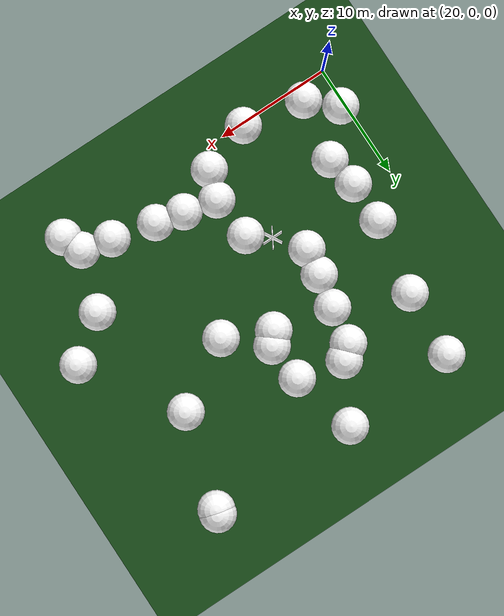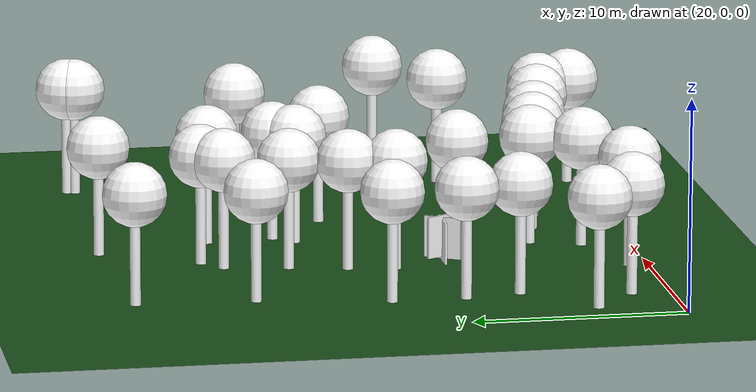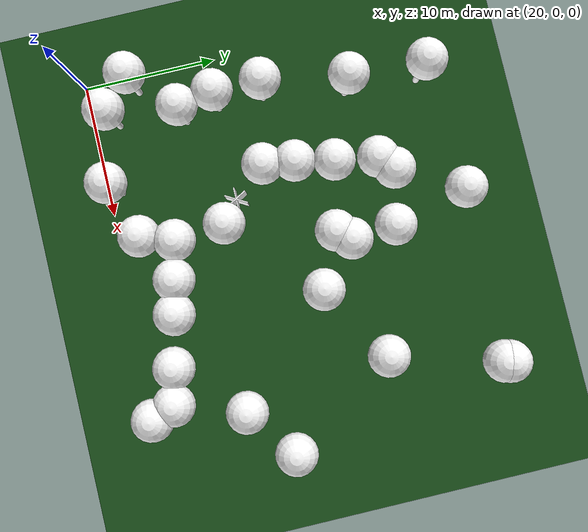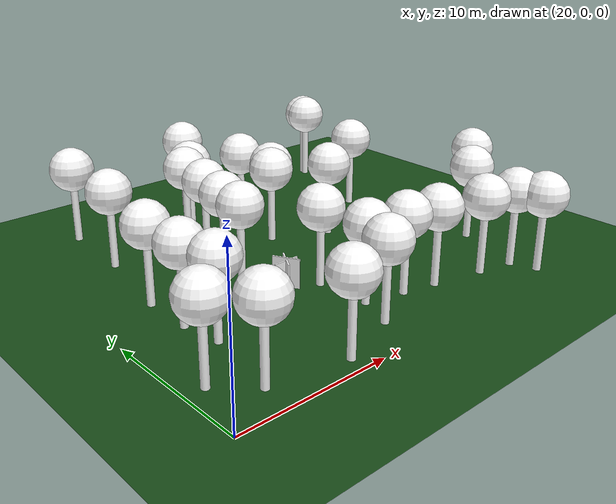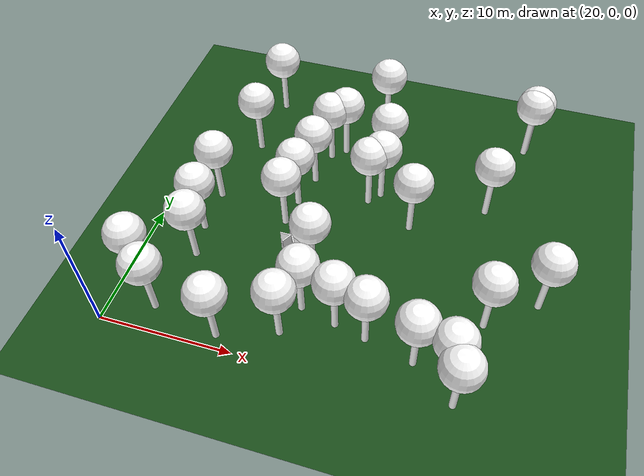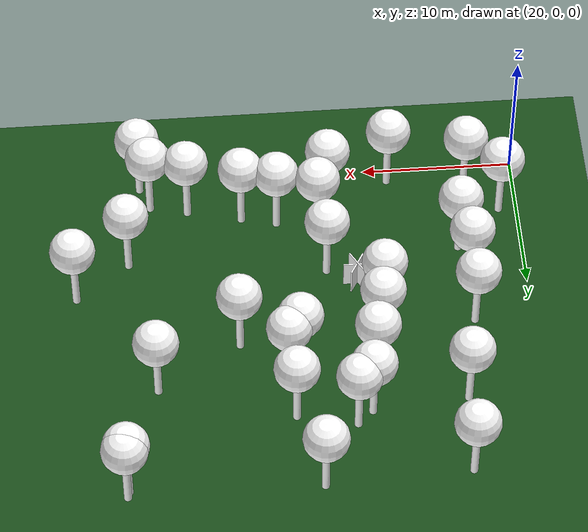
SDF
<sdf version="1.8">
 <world name="forest_world">
  <model name="tree_simple490">
   <static>1</static>
   <link name="link">
    <pose>0 0 0.1 0 -0 0</pose>
    <collision name="collision_trunk">
     <pose>0 0 2 0 -0 0</pose>
     <geometry><cylinder><radius>0.25</radius><length>4</length></cylinder></geometry>
    </collision>
    <collision name="collision_treetop">
     <pose>0 0 5.2 0 -0 0</pose>
     <geometry><sphere><radius>1.5</radius></sphere></geometry>
    </collision>
    <visual name="trunk">
     <pose>0 0 2 0 -0 0</pose>
     <geometry><cylinder><radius>0.25</radius><length>4</length></cylinder></geometry>
     <material>
      <ambient>0.5 0.5 0.5 1</ambient>
      <diffuse>1.0 1.0 1.0 1</diffuse>
      <specular>0.0 0.0 0.0 1</specular>
      <pbr>
       <metal>
        <albedo_map>../worlds/textures/tree_simple_trunk.jpg</albedo_map>
        <metalness>0.0</metalness>
        <roughness>0.8</roughness>
       </metal>
      </pbr>
     </material>
    </visual>
    <visual name="treetop">
     <pose>0 0 5.2 0 -0 0</pose>
     <geometry><sphere><radius>1.5</radius></sphere></geometry>
     <material>
      <ambient>0.5 0.5 0.5 1</ambient>
      <diffuse>1.0 1.0 1.0 1</diffuse>
      <specular>0.0 0.0 0.0 1</specular>
      <pbr>
       <metal>
        <albedo_map>../worlds/textures/tree_simple_treetop.jpg</albedo_map>
        <metalness>0.0</metalness>
        <roughness>0.9</roughness>
       </metal>
      </pbr>
     </material>
    </visual>
   </link>
   <pose>28.486302093 0.994684244644 0 0 -0 0</pose>
  </model>
  <model name="tree_simple487">
   <static>1</static>
   <link name="link">
    <pose>0 0 0.1 0 -0 0</pose>
    <collision name="collision_trunk">
     <pose>0 0 2 0 -0 0</pose>
     <geometry><cylinder><radius>0.25</radius><length>4</length></cylinder></geometry>
    </collision>
    <collision name="collision_treetop">
     <pose>0 0 5.2 0 -0 0</pose>
     <geometry><sphere><radius>1.5</radius></sphere></geometry>
    </collision>
    <visual name="trunk">
     <pose>0 0 2 0 -0 0</pose>
     <geometry><cylinder><radius>0.25</radius><length>4</length></cylinder></geometry>
     <material>
      <ambient>0.5 0.5 0.5 1</ambient>
      <diffuse>1.0 1.0 1.0 1</diffuse>
      <specular>0.0 0.0 0.0 1</specular>
      <pbr>
       <metal>
        <albedo_map>../worlds/textures/tree_simple_trunk.jpg</albedo_map>
        <metalness>0.0</metalness>
        <roughness>0.8</roughness>
       </metal>
      </pbr>
     </material>
    </visual>
    <visual name="treetop">
     <pose>0 0 5.2 0 -0 0</pose>
     <geometry><sphere><radius>1.5</radius></sphere></geometry>
     <material>
      <ambient>0.5 0.5 0.5 1</ambient>
      <diffuse>1.0 1.0 1.0 1</diffuse>
      <specular>0.0 0.0 0.0 1</specular>
      <pbr>
       <metal>
        <albedo_map>../worlds/textures/tree_simple_treetop.jpg</albedo_map>
        <metalness>0.0</metalness>
        <roughness>0.9</roughness>
       </metal>
      </pbr>
     </material>
    </visual>
   </link>
   <pose>33.1280168764 8.35331864597 0 0 -0 0</pose>
  </model>
  <model name="tree_simple485">
   <static>1</static>
   <link name="link">
    <pose>0 0 0.1 0 -0 0</pose>
    <collision name="collision_trunk">
     <pose>0 0 2 0 -0 0</pose>
     <geometry><cylinder><radius>0.25</radius><length>4</length></cylinder></geometry>
    </collision>
    <collision name="collision_treetop">
     <pose>0 0 5.2 0 -0 0</pose>
     <geometry><sphere><radius>1.5</radius></sphere></geometry>
    </collision>
    <visual name="trunk">
     <pose>0 0 2 0 -0 0</pose>
     <geometry><cylinder><radius>0.25</radius><length>4</length></cylinder></geometry>
     <material>
      <ambient>0.5 0.5 0.5 1</ambient>
      <diffuse>1.0 1.0 1.0 1</diffuse>
      <specular>0.0 0.0 0.0 1</specular>
      <pbr>
       <metal>
        <albedo_map>../worlds/textures/tree_simple_trunk.jpg</albedo_map>
        <metalness>0.0</metalness>
        <roughness>0.8</roughness>
       </metal>
      </pbr>
     </material>
    </visual>
    <visual name="treetop">
     <pose>0 0 5.2 0 -0 0</pose>
     <geometry><sphere><radius>1.5</radius></sphere></geometry>
     <material>
      <ambient>0.5 0.5 0.5 1</ambient>
      <diffuse>1.0 1.0 1.0 1</diffuse>
      <specular>0.0 0.0 0.0 1</specular>
      <pbr>
       <metal>
        <albedo_map>../worlds/textures/tree_simple_treetop.jpg</albedo_map>
        <metalness>0.0</metalness>
        <roughness>0.9</roughness>
       </metal>
      </pbr>
     </material>
    </visual>
   </link>
   <pose>38.4673421664 3.60529435805 0 0 -0 0</pose>
  </model>
  <model name="tree_simple431">
   <static>1</static>
   <link name="link">
    <pose>0 0 0.1 0 -0 0</pose>
    <collision name="collision_trunk">
     <pose>0 0 2 0 -0 0</pose>
     <geometry><cylinder><radius>0.25</radius><length>4</length></cylinder></geometry>
    </collision>
    <collision name="collision_treetop">
     <pose>0 0 5.2 0 -0 0</pose>
     <geometry><sphere><radius>1.5</radius></sphere></geometry>
    </collision>
    <visual name="trunk">
     <pose>0 0 2 0 -0 0</pose>
     <geometry><cylinder><radius>0.25</radius><length>4</length></cylinder></geometry>
     <material>
      <ambient>0.5 0.5 0.5 1</ambient>
      <diffuse>1.0 1.0 1.0 1</diffuse>
      <specular>0.0 0.0 0.0 1</specular>
      <pbr>
       <metal>
        <albedo_map>../worlds/textures/tree_simple_trunk.jpg</albedo_map>
        <metalness>0.0</metalness>
        <roughness>0.8</roughness>
       </metal>
      </pbr>
     </material>
    </visual>
    <visual name="treetop">
     <pose>0 0 5.2 0 -0 0</pose>
     <geometry><sphere><radius>1.5</radius></sphere></geometry>
     <material>
      <ambient>0.5 0.5 0.5 1</ambient>
      <diffuse>1.0 1.0 1.0 1</diffuse>
      <specular>0.0 0.0 0.0 1</specular>
      <pbr>
       <metal>
        <albedo_map>../worlds/textures/tree_simple_treetop.jpg</albedo_map>
        <metalness>0.0</metalness>
        <roughness>0.9</roughness>
       </metal>
      </pbr>
     </material>
    </visual>
   </link>
   <pose>21.2091972338 3.93897030512 0 0 -0 0</pose>
  </model>
  <model name="tree_simple387">
   <static>1</static>
   <link name="link">
    <pose>0 0 0.1 0 -0 0</pose>
    <collision name="collision_trunk">
     <pose>0 0 2 0 -0 0</pose>
     <geometry><cylinder><radius>0.25</radius><length>4</length></cylinder></geometry>
    </collision>
    <collision name="collision_treetop">
     <pose>0 0 5.2 0 -0 0</pose>
     <geometry><sphere><radius>1.5</radius></sphere></geometry>
    </collision>
    <visual name="trunk">
     <pose>0 0 2 0 -0 0</pose>
     <geometry><cylinder><radius>0.25</radius><length>4</length></cylinder></geometry>
     <material>
      <ambient>0.5 0.5 0.5 1</ambient>
      <diffuse>1.0 1.0 1.0 1</diffuse>
      <specular>0.0 0.0 0.0 1</specular>
      <pbr>
       <metal>
        <albedo_map>../worlds/textures/tree_simple_trunk.jpg</albedo_map>
        <metalness>0.0</metalness>
        <roughness>0.8</roughness>
       </metal>
      </pbr>
     </material>
    </visual>
    <visual name="treetop">
     <pose>0 0 5.2 0 -0 0</pose>
     <geometry><sphere><radius>1.5</radius></sphere></geometry>
     <material>
      <ambient>0.5 0.5 0.5 1</ambient>
      <diffuse>1.0 1.0 1.0 1</diffuse>
      <specular>0.0 0.0 0.0 1</specular>
      <pbr>
       <metal>
        <albedo_map>../worlds/textures/tree_simple_treetop.jpg</albedo_map>
        <metalness>0.0</metalness>
        <roughness>0.9</roughness>
       </metal>
      </pbr>
     </material>
    </visual>
   </link>
   <pose>25.1584680938 24.780687948 0 0 -0 0</pose>
  </model>
  <model name="tree_simple363">
   <static>1</static>
   <link name="link">
    <pose>0 0 0.1 0 -0 0</pose>
    <collision name="collision_trunk">
     <pose>0 0 2 0 -0 0</pose>
     <geometry><cylinder><radius>0.25</radius><length>4</length></cylinder></geometry>
    </collision>
    <collision name="collision_treetop">
     <pose>0 0 5.2 0 -0 0</pose>
     <geometry><sphere><radius>1.5</radius></sphere></geometry>
    </collision>
    <visual name="trunk">
     <pose>0 0 2 0 -0 0</pose>
     <geometry><cylinder><radius>0.25</radius><length>4</length></cylinder></geometry>
     <material>
      <ambient>0.5 0.5 0.5 1</ambient>
      <diffuse>1.0 1.0 1.0 1</diffuse>
      <specular>0.0 0.0 0.0 1</specular>
      <pbr>
       <metal>
        <albedo_map>../worlds/textures/tree_simple_trunk.jpg</albedo_map>
        <metalness>0.0</metalness>
        <roughness>0.8</roughness>
       </metal>
      </pbr>
     </material>
    </visual>
    <visual name="treetop">
     <pose>0 0 5.2 0 -0 0</pose>
     <geometry><sphere><radius>1.5</radius></sphere></geometry>
     <material>
      <ambient>0.5 0.5 0.5 1</ambient>
      <diffuse>1.0 1.0 1.0 1</diffuse>
      <specular>0.0 0.0 0.0 1</specular>
      <pbr>
       <metal>
        <albedo_map>../worlds/textures/tree_simple_treetop.jpg</albedo_map>
        <metalness>0.0</metalness>
        <roughness>0.9</roughness>
       </metal>
      </pbr>
     </material>
    </visual>
   </link>
   <pose>45.144398785 0.58220424318 0 0 -0 0</pose>
  </model>
  <model name="tree_simple354">
   <static>1</static>
   <link name="link">
    <pose>0 0 0.1 0 -0 0</pose>
    <collision name="collision_trunk">
     <pose>0 0 2 0 -0 0</pose>
     <geometry><cylinder><radius>0.25</radius><length>4</length></cylinder></geometry>
    </collision>
    <collision name="collision_treetop">
     <pose>0 0 5.2 0 -0 0</pose>
     <geometry><sphere><radius>1.5</radius></sphere></geometry>
    </collision>
    <visual name="trunk">
     <pose>0 0 2 0 -0 0</pose>
     <geometry><cylinder><radius>0.25</radius><length>4</length></cylinder></geometry>
     <material>
      <ambient>0.5 0.5 0.5 1</ambient>
      <diffuse>1.0 1.0 1.0 1</diffuse>
      <specular>0.0 0.0 0.0 1</specular>
      <pbr>
       <metal>
        <albedo_map>../worlds/textures/tree_simple_trunk.jpg</albedo_map>
        <metalness>0.0</metalness>
        <roughness>0.8</roughness>
       </metal>
      </pbr>
     </material>
    </visual>
    <visual name="treetop">
     <pose>0 0 5.2 0 -0 0</pose>
     <geometry><sphere><radius>1.5</radius></sphere></geometry>
     <material>
      <ambient>0.5 0.5 0.5 1</ambient>
      <diffuse>1.0 1.0 1.0 1</diffuse>
      <specular>0.0 0.0 0.0 1</specular>
      <pbr>
       <metal>
        <albedo_map>../worlds/textures/tree_simple_treetop.jpg</albedo_map>
        <metalness>0.0</metalness>
        <roughness>0.9</roughness>
       </metal>
      </pbr>
     </material>
    </visual>
   </link>
   <pose>32.6407591413 2.42607799047 0 0 -0 0</pose>
  </model>
  <model name="tree_simple335">
   <static>1</static>
   <link name="link">
    <pose>0 0 0.1 0 -0 0</pose>
    <collision name="collision_trunk">
     <pose>0 0 2 0 -0 0</pose>
     <geometry><cylinder><radius>0.25</radius><length>4</length></cylinder></geometry>
    </collision>
    <collision name="collision_treetop">
     <pose>0 0 5.2 0 -0 0</pose>
     <geometry><sphere><radius>1.5</radius></sphere></geometry>
    </collision>
    <visual name="trunk">
     <pose>0 0 2 0 -0 0</pose>
     <geometry><cylinder><radius>0.25</radius><length>4</length></cylinder></geometry>
     <material>
      <ambient>0.5 0.5 0.5 1</ambient>
      <diffuse>1.0 1.0 1.0 1</diffuse>
      <specular>0.0 0.0 0.0 1</specular>
      <pbr>
       <metal>
        <albedo_map>../worlds/textures/tree_simple_trunk.jpg</albedo_map>
        <metalness>0.0</metalness>
        <roughness>0.8</roughness>
       </metal>
      </pbr>
     </material>
    </visual>
    <visual name="treetop">
     <pose>0 0 5.2 0 -0 0</pose>
     <geometry><sphere><radius>1.5</radius></sphere></geometry>
     <material>
      <ambient>0.5 0.5 0.5 1</ambient>
      <diffuse>1.0 1.0 1.0 1</diffuse>
      <specular>0.0 0.0 0.0 1</specular>
      <pbr>
       <metal>
        <albedo_map>../worlds/textures/tree_simple_treetop.jpg</albedo_map>
        <metalness>0.0</metalness>
        <roughness>0.9</roughness>
       </metal>
      </pbr>
     </material>
    </visual>
   </link>
   <pose>34.5368026381 25.2759033923 0 0 -0 0</pose>
  </model>
  <model name="tree_simple297">
   <static>1</static>
   <link name="link">
    <pose>0 0 0.1 0 -0 0</pose>
    <collision name="collision_trunk">
     <pose>0 0 2 0 -0 0</pose>
     <geometry><cylinder><radius>0.25</radius><length>4</length></cylinder></geometry>
    </collision>
    <collision name="collision_treetop">
     <pose>0 0 5.2 0 -0 0</pose>
     <geometry><sphere><radius>1.5</radius></sphere></geometry>
    </collision>
    <visual name="trunk">
     <pose>0 0 2 0 -0 0</pose>
     <geometry><cylinder><radius>0.25</radius><length>4</length></cylinder></geometry>
     <material>
      <ambient>0.5 0.5 0.5 1</ambient>
      <diffuse>1.0 1.0 1.0 1</diffuse>
      <specular>0.0 0.0 0.0 1</specular>
      <pbr>
       <metal>
        <albedo_map>../worlds/textures/tree_simple_trunk.jpg</albedo_map>
        <metalness>0.0</metalness>
        <roughness>0.8</roughness>
       </metal>
      </pbr>
     </material>
    </visual>
    <visual name="treetop">
     <pose>0 0 5.2 0 -0 0</pose>
     <geometry><sphere><radius>1.5</radius></sphere></geometry>
     <material>
      <ambient>0.5 0.5 0.5 1</ambient>
      <diffuse>1.0 1.0 1.0 1</diffuse>
      <specular>0.0 0.0 0.0 1</specular>
      <pbr>
       <metal>
        <albedo_map>../worlds/textures/tree_simple_treetop.jpg</albedo_map>
        <metalness>0.0</metalness>
        <roughness>0.9</roughness>
       </metal>
      </pbr>
     </material>
    </visual>
   </link>
   <pose>30.5775161842 16.8175844191 0 0 -0 0</pose>
  </model>
  <model name="tree_simple296">
   <static>1</static>
   <link name="link">
    <pose>0 0 0.1 0 -0 0</pose>
    <collision name="collision_trunk">
     <pose>0 0 2 0 -0 0</pose>
     <geometry><cylinder><radius>0.25</radius><length>4</length></cylinder></geometry>
    </collision>
    <collision name="collision_treetop">
     <pose>0 0 5.2 0 -0 0</pose>
     <geometry><sphere><radius>1.5</radius></sphere></geometry>
    </collision>
    <visual name="trunk">
     <pose>0 0 2 0 -0 0</pose>
     <geometry><cylinder><radius>0.25</radius><length>4</length></cylinder></geometry>
     <material>
      <ambient>0.5 0.5 0.5 1</ambient>
      <diffuse>1.0 1.0 1.0 1</diffuse>
      <specular>0.0 0.0 0.0 1</specular>
      <pbr>
       <metal>
        <albedo_map>../worlds/textures/tree_simple_trunk.jpg</albedo_map>
        <metalness>0.0</metalness>
        <roughness>0.8</roughness>
       </metal>
      </pbr>
     </material>
    </visual>
    <visual name="treetop">
     <pose>0 0 5.2 0 -0 0</pose>
     <geometry><sphere><radius>1.5</radius></sphere></geometry>
     <material>
      <ambient>0.5 0.5 0.5 1</ambient>
      <diffuse>1.0 1.0 1.0 1</diffuse>
      <specular>0.0 0.0 0.0 1</specular>
      <pbr>
       <metal>
        <albedo_map>../worlds/textures/tree_simple_treetop.jpg</albedo_map>
        <metalness>0.0</metalness>
        <roughness>0.9</roughness>
       </metal>
      </pbr>
     </material>
    </visual>
   </link>
   <pose>44.6267245304 17.3019041373 0 0 -0 0</pose>
  </model>
  <model name="tree_simple293">
   <static>1</static>
   <link name="link">
    <pose>0 0 0.1 0 -0 0</pose>
    <collision name="collision_trunk">
     <pose>0 0 2 0 -0 0</pose>
     <geometry><cylinder><radius>0.25</radius><length>4</length></cylinder></geometry>
    </collision>
    <collision name="collision_treetop">
     <pose>0 0 5.2 0 -0 0</pose>
     <geometry><sphere><radius>1.5</radius></sphere></geometry>
    </collision>
    <visual name="trunk">
     <pose>0 0 2 0 -0 0</pose>
     <geometry><cylinder><radius>0.25</radius><length>4</length></cylinder></geometry>
     <material>
      <ambient>0.5 0.5 0.5 1</ambient>
      <diffuse>1.0 1.0 1.0 1</diffuse>
      <specular>0.0 0.0 0.0 1</specular>
      <pbr>
       <metal>
        <albedo_map>../worlds/textures/tree_simple_trunk.jpg</albedo_map>
        <metalness>0.0</metalness>
        <roughness>0.8</roughness>
       </metal>
      </pbr>
     </material>
    </visual>
    <visual name="treetop">
     <pose>0 0 5.2 0 -0 0</pose>
     <geometry><sphere><radius>1.5</radius></sphere></geometry>
     <material>
      <ambient>0.5 0.5 0.5 1</ambient>
      <diffuse>1.0 1.0 1.0 1</diffuse>
      <specular>0.0 0.0 0.0 1</specular>
      <pbr>
       <metal>
        <albedo_map>../worlds/textures/tree_simple_treetop.jpg</albedo_map>
        <metalness>0.0</metalness>
        <roughness>0.9</roughness>
       </metal>
      </pbr>
     </material>
    </visual>
   </link>
   <pose>23.4063524119 1.93979754522 0 0 -0 0</pose>
  </model>
  <model name="tree_simple283">
   <static>1</static>
   <link name="link">
    <pose>0 0 0.1 0 -0 0</pose>
    <collision name="collision_trunk">
     <pose>0 0 2 0 -0 0</pose>
     <geometry><cylinder><radius>0.25</radius><length>4</length></cylinder></geometry>
    </collision>
    <collision name="collision_treetop">
     <pose>0 0 5.2 0 -0 0</pose>
     <geometry><sphere><radius>1.5</radius></sphere></geometry>
    </collision>
    <visual name="trunk">
     <pose>0 0 2 0 -0 0</pose>
     <geometry><cylinder><radius>0.25</radius><length>4</length></cylinder></geometry>
     <material>
      <ambient>0.5 0.5 0.5 1</ambient>
      <diffuse>1.0 1.0 1.0 1</diffuse>
      <specular>0.0 0.0 0.0 1</specular>
      <pbr>
       <metal>
        <albedo_map>../worlds/textures/tree_simple_trunk.jpg</albedo_map>
        <metalness>0.0</metalness>
        <roughness>0.8</roughness>
       </metal>
      </pbr>
     </material>
    </visual>
    <visual name="treetop">
     <pose>0 0 5.2 0 -0 0</pose>
     <geometry><sphere><radius>1.5</radius></sphere></geometry>
     <material>
      <ambient>0.5 0.5 0.5 1</ambient>
      <diffuse>1.0 1.0 1.0 1</diffuse>
      <specular>0.0 0.0 0.0 1</specular>
      <pbr>
       <metal>
        <albedo_map>../worlds/textures/tree_simple_treetop.jpg</albedo_map>
        <metalness>0.0</metalness>
        <roughness>0.9</roughness>
       </metal>
      </pbr>
     </material>
    </visual>
   </link>
   <pose>39.1815186035 14.0237047255 0 0 -0 0</pose>
  </model>
  <model name="tree_simple277">
   <static>1</static>
   <link name="link">
    <pose>0 0 0.1 0 -0 0</pose>
    <collision name="collision_trunk">
     <pose>0 0 2 0 -0 0</pose>
     <geometry><cylinder><radius>0.25</radius><length>4</length></cylinder></geometry>
    </collision>
    <collision name="collision_treetop">
     <pose>0 0 5.2 0 -0 0</pose>
     <geometry><sphere><radius>1.5</radius></sphere></geometry>
    </collision>
    <visual name="trunk">
     <pose>0 0 2 0 -0 0</pose>
     <geometry><cylinder><radius>0.25</radius><length>4</length></cylinder></geometry>
     <material>
      <ambient>0.5 0.5 0.5 1</ambient>
      <diffuse>1.0 1.0 1.0 1</diffuse>
      <specular>0.0 0.0 0.0 1</specular>
      <pbr>
       <metal>
        <albedo_map>../worlds/textures/tree_simple_trunk.jpg</albedo_map>
        <metalness>0.0</metalness>
        <roughness>0.8</roughness>
       </metal>
      </pbr>
     </material>
    </visual>
    <visual name="treetop">
     <pose>0 0 5.2 0 -0 0</pose>
     <geometry><sphere><radius>1.5</radius></sphere></geometry>
     <material>
      <ambient>0.5 0.5 0.5 1</ambient>
      <diffuse>1.0 1.0 1.0 1</diffuse>
      <specular>0.0 0.0 0.0 1</specular>
      <pbr>
       <metal>
        <albedo_map>../worlds/textures/tree_simple_treetop.jpg</albedo_map>
        <metalness>0.0</metalness>
        <roughness>0.9</roughness>
       </metal>
      </pbr>
     </material>
    </visual>
   </link>
   <pose>29.6986775877 11.8803123921 0 0 -0 0</pose>
  </model>
  <model name="tree_simple274">
   <static>1</static>
   <link name="link">
    <pose>0 0 0.1 0 -0 0</pose>
    <collision name="collision_trunk">
     <pose>0 0 2 0 -0 0</pose>
     <geometry><cylinder><radius>0.25</radius><length>4</length></cylinder></geometry>
    </collision>
    <collision name="collision_treetop">
     <pose>0 0 5.2 0 -0 0</pose>
     <geometry><sphere><radius>1.5</radius></sphere></geometry>
    </collision>
    <visual name="trunk">
     <pose>0 0 2 0 -0 0</pose>
     <geometry><cylinder><radius>0.25</radius><length>4</length></cylinder></geometry>
     <material>
      <ambient>0.5 0.5 0.5 1</ambient>
      <diffuse>1.0 1.0 1.0 1</diffuse>
      <specular>0.0 0.0 0.0 1</specular>
      <pbr>
       <metal>
        <albedo_map>../worlds/textures/tree_simple_trunk.jpg</albedo_map>
        <metalness>0.0</metalness>
        <roughness>0.8</roughness>
       </metal>
      </pbr>
     </material>
    </visual>
    <visual name="treetop">
     <pose>0 0 5.2 0 -0 0</pose>
     <geometry><sphere><radius>1.5</radius></sphere></geometry>
     <material>
      <ambient>0.5 0.5 0.5 1</ambient>
      <diffuse>1.0 1.0 1.0 1</diffuse>
      <specular>0.0 0.0 0.0 1</specular>
      <pbr>
       <metal>
        <albedo_map>../worlds/textures/tree_simple_treetop.jpg</albedo_map>
        <metalness>0.0</metalness>
        <roughness>0.9</roughness>
       </metal>
      </pbr>
     </material>
    </visual>
   </link>
   <pose>36.1444858675 4.12221392714 0 0 -0 0</pose>
  </model>
  <model name="tree_simple270">
   <static>1</static>
   <link name="link">
    <pose>0 0 0.1 0 -0 0</pose>
    <collision name="collision_trunk">
     <pose>0 0 2 0 -0 0</pose>
     <geometry><cylinder><radius>0.25</radius><length>4</length></cylinder></geometry>
    </collision>
    <collision name="collision_treetop">
     <pose>0 0 5.2 0 -0 0</pose>
     <geometry><sphere><radius>1.5</radius></sphere></geometry>
    </collision>
    <visual name="trunk">
     <pose>0 0 2 0 -0 0</pose>
     <geometry><cylinder><radius>0.25</radius><length>4</length></cylinder></geometry>
     <material>
      <ambient>0.5 0.5 0.5 1</ambient>
      <diffuse>1.0 1.0 1.0 1</diffuse>
      <specular>0.0 0.0 0.0 1</specular>
      <pbr>
       <metal>
        <albedo_map>../worlds/textures/tree_simple_trunk.jpg</albedo_map>
        <metalness>0.0</metalness>
        <roughness>0.8</roughness>
       </metal>
      </pbr>
     </material>
    </visual>
    <visual name="treetop">
     <pose>0 0 5.2 0 -0 0</pose>
     <geometry><sphere><radius>1.5</radius></sphere></geometry>
     <material>
      <ambient>0.5 0.5 0.5 1</ambient>
      <diffuse>1.0 1.0 1.0 1</diffuse>
      <specular>0.0 0.0 0.0 1</specular>
      <pbr>
       <metal>
        <albedo_map>../worlds/textures/tree_simple_treetop.jpg</albedo_map>
        <metalness>0.0</metalness>
        <roughness>0.9</roughness>
       </metal>
      </pbr>
     </material>
    </visual>
   </link>
   <pose>36.1848743211 16.7262379366 0 0 -0 0</pose>
  </model>
  <model name="tree_simple266">
   <static>1</static>
   <link name="link">
    <pose>0 0 0.1 0 -0 0</pose>
    <collision name="collision_trunk">
     <pose>0 0 2 0 -0 0</pose>
     <geometry><cylinder><radius>0.25</radius><length>4</length></cylinder></geometry>
    </collision>
    <collision name="collision_treetop">
     <pose>0 0 5.2 0 -0 0</pose>
     <geometry><sphere><radius>1.5</radius></sphere></geometry>
    </collision>
    <visual name="trunk">
     <pose>0 0 2 0 -0 0</pose>
     <geometry><cylinder><radius>0.25</radius><length>4</length></cylinder></geometry>
     <material>
      <ambient>0.5 0.5 0.5 1</ambient>
      <diffuse>1.0 1.0 1.0 1</diffuse>
      <specular>0.0 0.0 0.0 1</specular>
      <pbr>
       <metal>
        <albedo_map>../worlds/textures/tree_simple_trunk.jpg</albedo_map>
        <metalness>0.0</metalness>
        <roughness>0.8</roughness>
       </metal>
      </pbr>
     </material>
    </visual>
    <visual name="treetop">
     <pose>0 0 5.2 0 -0 0</pose>
     <geometry><sphere><radius>1.5</radius></sphere></geometry>
     <material>
      <ambient>0.5 0.5 0.5 1</ambient>
      <diffuse>1.0 1.0 1.0 1</diffuse>
      <specular>0.0 0.0 0.0 1</specular>
      <pbr>
       <metal>
        <albedo_map>../worlds/textures/tree_simple_treetop.jpg</albedo_map>
        <metalness>0.0</metalness>
        <roughness>0.9</roughness>
       </metal>
      </pbr>
     </material>
    </visual>
   </link>
   <pose>24.8758321483 19.2237149963 0 0 -0 0</pose>
  </model>
  <model name="tree_simple242">
   <static>1</static>
   <link name="link">
    <pose>0 0 0.1 0 -0 0</pose>
    <collision name="collision_trunk">
     <pose>0 0 2 0 -0 0</pose>
     <geometry><cylinder><radius>0.25</radius><length>4</length></cylinder></geometry>
    </collision>
    <collision name="collision_treetop">
     <pose>0 0 5.2 0 -0 0</pose>
     <geometry><sphere><radius>1.5</radius></sphere></geometry>
    </collision>
    <visual name="trunk">
     <pose>0 0 2 0 -0 0</pose>
     <geometry><cylinder><radius>0.25</radius><length>4</length></cylinder></geometry>
     <material>
      <ambient>0.5 0.5 0.5 1</ambient>
      <diffuse>1.0 1.0 1.0 1</diffuse>
      <specular>0.0 0.0 0.0 1</specular>
      <pbr>
       <metal>
        <albedo_map>../worlds/textures/tree_simple_trunk.jpg</albedo_map>
        <metalness>0.0</metalness>
        <roughness>0.8</roughness>
       </metal>
      </pbr>
     </material>
    </visual>
    <visual name="treetop">
     <pose>0 0 5.2 0 -0 0</pose>
     <geometry><sphere><radius>1.5</radius></sphere></geometry>
     <material>
      <ambient>0.5 0.5 0.5 1</ambient>
      <diffuse>1.0 1.0 1.0 1</diffuse>
      <specular>0.0 0.0 0.0 1</specular>
      <pbr>
       <metal>
        <albedo_map>../worlds/textures/tree_simple_treetop.jpg</albedo_map>
        <metalness>0.0</metalness>
        <roughness>0.9</roughness>
       </metal>
      </pbr>
     </material>
    </visual>
   </link>
   <pose>23.8093795921 9.61974989159 0 0 -0 0</pose>
  </model>
  <model name="tree_simple238">
   <static>1</static>
   <link name="link">
    <pose>0 0 0.1 0 -0 0</pose>
    <collision name="collision_trunk">
     <pose>0 0 2 0 -0 0</pose>
     <geometry><cylinder><radius>0.25</radius><length>4</length></cylinder></geometry>
    </collision>
    <collision name="collision_treetop">
     <pose>0 0 5.2 0 -0 0</pose>
     <geometry><sphere><radius>1.5</radius></sphere></geometry>
    </collision>
    <visual name="trunk">
     <pose>0 0 2 0 -0 0</pose>
     <geometry><cylinder><radius>0.25</radius><length>4</length></cylinder></geometry>
     <material>
      <ambient>0.5 0.5 0.5 1</ambient>
      <diffuse>1.0 1.0 1.0 1</diffuse>
      <specular>0.0 0.0 0.0 1</specular>
      <pbr>
       <metal>
        <albedo_map>../worlds/textures/tree_simple_trunk.jpg</albedo_map>
        <metalness>0.0</metalness>
        <roughness>0.8</roughness>
       </metal>
      </pbr>
     </material>
    </visual>
    <visual name="treetop">
     <pose>0 0 5.2 0 -0 0</pose>
     <geometry><sphere><radius>1.5</radius></sphere></geometry>
     <material>
      <ambient>0.5 0.5 0.5 1</ambient>
      <diffuse>1.0 1.0 1.0 1</diffuse>
      <specular>0.0 0.0 0.0 1</specular>
      <pbr>
       <metal>
        <albedo_map>../worlds/textures/tree_simple_treetop.jpg</albedo_map>
        <metalness>0.0</metalness>
        <roughness>0.9</roughness>
       </metal>
      </pbr>
     </material>
    </visual>
   </link>
   <pose>46.8869167901 25.2834545483 0 0 -0 0</pose>
  </model>
  <model name="tree_simple237">
   <static>1</static>
   <link name="link">
    <pose>0 0 0.1 0 -0 0</pose>
    <collision name="collision_trunk">
     <pose>0 0 2 0 -0 0</pose>
     <geometry><cylinder><radius>0.25</radius><length>4</length></cylinder></geometry>
    </collision>
    <collision name="collision_treetop">
     <pose>0 0 5.2 0 -0 0</pose>
     <geometry><sphere><radius>1.5</radius></sphere></geometry>
    </collision>
    <visual name="trunk">
     <pose>0 0 2 0 -0 0</pose>
     <geometry><cylinder><radius>0.25</radius><length>4</length></cylinder></geometry>
     <material>
      <ambient>0.5 0.5 0.5 1</ambient>
      <diffuse>1.0 1.0 1.0 1</diffuse>
      <specular>0.0 0.0 0.0 1</specular>
      <pbr>
       <metal>
        <albedo_map>../worlds/textures/tree_simple_trunk.jpg</albedo_map>
        <metalness>0.0</metalness>
        <roughness>0.8</roughness>
       </metal>
      </pbr>
     </material>
    </visual>
    <visual name="treetop">
     <pose>0 0 5.2 0 -0 0</pose>
     <geometry><sphere><radius>1.5</radius></sphere></geometry>
     <material>
      <ambient>0.5 0.5 0.5 1</ambient>
      <diffuse>1.0 1.0 1.0 1</diffuse>
      <specular>0.0 0.0 0.0 1</specular>
      <pbr>
       <metal>
        <albedo_map>../worlds/textures/tree_simple_treetop.jpg</albedo_map>
        <metalness>0.0</metalness>
        <roughness>0.9</roughness>
       </metal>
      </pbr>
     </material>
    </visual>
   </link>
   <pose>23.796461239 13.0760295483 0 0 -0 0</pose>
  </model>
  <model name="tree_simple219">
   <static>1</static>
   <link name="link">
    <pose>0 0 0.1 0 -0 0</pose>
    <collision name="collision_trunk">
     <pose>0 0 2 0 -0 0</pose>
     <geometry><cylinder><radius>0.25</radius><length>4</length></cylinder></geometry>
    </collision>
    <collision name="collision_treetop">
     <pose>0 0 5.2 0 -0 0</pose>
     <geometry><sphere><radius>1.5</radius></sphere></geometry>
    </collision>
    <visual name="trunk">
     <pose>0 0 2 0 -0 0</pose>
     <geometry><cylinder><radius>0.25</radius><length>4</length></cylinder></geometry>
     <material>
      <ambient>0.5 0.5 0.5 1</ambient>
      <diffuse>1.0 1.0 1.0 1</diffuse>
      <specular>0.0 0.0 0.0 1</specular>
      <pbr>
       <metal>
        <albedo_map>../worlds/textures/tree_simple_trunk.jpg</albedo_map>
        <metalness>0.0</metalness>
        <roughness>0.8</roughness>
       </metal>
      </pbr>
     </material>
    </visual>
    <visual name="treetop">
     <pose>0 0 5.2 0 -0 0</pose>
     <geometry><sphere><radius>1.5</radius></sphere></geometry>
     <material>
      <ambient>0.5 0.5 0.5 1</ambient>
      <diffuse>1.0 1.0 1.0 1</diffuse>
      <specular>0.0 0.0 0.0 1</specular>
      <pbr>
       <metal>
        <albedo_map>../worlds/textures/tree_simple_treetop.jpg</albedo_map>
        <metalness>0.0</metalness>
        <roughness>0.9</roughness>
       </metal>
      </pbr>
     </material>
    </visual>
   </link>
   <pose>32.089947678 20.7584358719 0 0 -0 0</pose>
  </model>
  <model name="tree_simple216">
   <static>1</static>
   <link name="link">
    <pose>0 0 0.1 0 -0 0</pose>
    <collision name="collision_trunk">
     <pose>0 0 2 0 -0 0</pose>
     <geometry><cylinder><radius>0.25</radius><length>4</length></cylinder></geometry>
    </collision>
    <collision name="collision_treetop">
     <pose>0 0 5.2 0 -0 0</pose>
     <geometry><sphere><radius>1.5</radius></sphere></geometry>
    </collision>
    <visual name="trunk">
     <pose>0 0 2 0 -0 0</pose>
     <geometry><cylinder><radius>0.25</radius><length>4</length></cylinder></geometry>
     <material>
      <ambient>0.5 0.5 0.5 1</ambient>
      <diffuse>1.0 1.0 1.0 1</diffuse>
      <specular>0.0 0.0 0.0 1</specular>
      <pbr>
       <metal>
        <albedo_map>../worlds/textures/tree_simple_trunk.jpg</albedo_map>
        <metalness>0.0</metalness>
        <roughness>0.8</roughness>
       </metal>
      </pbr>
     </material>
    </visual>
    <visual name="treetop">
     <pose>0 0 5.2 0 -0 0</pose>
     <geometry><sphere><radius>1.5</radius></sphere></geometry>
     <material>
      <ambient>0.5 0.5 0.5 1</ambient>
      <diffuse>1.0 1.0 1.0 1</diffuse>
      <specular>0.0 0.0 0.0 1</specular>
      <pbr>
       <metal>
        <albedo_map>../worlds/textures/tree_simple_treetop.jpg</albedo_map>
        <metalness>0.0</metalness>
        <roughness>0.9</roughness>
       </metal>
      </pbr>
     </material>
    </visual>
   </link>
   <pose>46.7848412988 24.905742282 0 0 -0 0</pose>
  </model>
  <model name="tree_simple188">
   <static>1</static>
   <link name="link">
    <pose>0 0 0.1 0 -0 0</pose>
    <collision name="collision_trunk">
     <pose>0 0 2 0 -0 0</pose>
     <geometry><cylinder><radius>0.25</radius><length>4</length></cylinder></geometry>
    </collision>
    <collision name="collision_treetop">
     <pose>0 0 5.2 0 -0 0</pose>
     <geometry><sphere><radius>1.5</radius></sphere></geometry>
    </collision>
    <visual name="trunk">
     <pose>0 0 2 0 -0 0</pose>
     <geometry><cylinder><radius>0.25</radius><length>4</length></cylinder></geometry>
     <material>
      <ambient>0.5 0.5 0.5 1</ambient>
      <diffuse>1.0 1.0 1.0 1</diffuse>
      <specular>0.0 0.0 0.0 1</specular>
      <pbr>
       <metal>
        <albedo_map>../worlds/textures/tree_simple_trunk.jpg</albedo_map>
        <metalness>0.0</metalness>
        <roughness>0.8</roughness>
       </metal>
      </pbr>
     </material>
    </visual>
    <visual name="treetop">
     <pose>0 0 5.2 0 -0 0</pose>
     <geometry><sphere><radius>1.5</radius></sphere></geometry>
     <material>
      <ambient>0.5 0.5 0.5 1</ambient>
      <diffuse>1.0 1.0 1.0 1</diffuse>
      <specular>0.0 0.0 0.0 1</specular>
      <pbr>
       <metal>
        <albedo_map>../worlds/textures/tree_simple_treetop.jpg</albedo_map>
        <metalness>0.0</metalness>
        <roughness>0.9</roughness>
       </metal>
      </pbr>
     </material>
    </visual>
   </link>
   <pose>31.0766060016 19.8231593676 0 0 -0 0</pose>
  </model>
  <model name="tree_simple151">
   <static>1</static>
   <link name="link">
    <pose>0 0 0.1 0 -0 0</pose>
    <collision name="collision_trunk">
     <pose>0 0 2 0 -0 0</pose>
     <geometry><cylinder><radius>0.25</radius><length>4</length></cylinder></geometry>
    </collision>
    <collision name="collision_treetop">
     <pose>0 0 5.2 0 -0 0</pose>
     <geometry><sphere><radius>1.5</radius></sphere></geometry>
    </collision>
    <visual name="trunk">
     <pose>0 0 2 0 -0 0</pose>
     <geometry><cylinder><radius>0.25</radius><length>4</length></cylinder></geometry>
     <material>
      <ambient>0.5 0.5 0.5 1</ambient>
      <diffuse>1.0 1.0 1.0 1</diffuse>
      <specular>0.0 0.0 0.0 1</specular>
      <pbr>
       <metal>
        <albedo_map>../worlds/textures/tree_simple_trunk.jpg</albedo_map>
        <metalness>0.0</metalness>
        <roughness>0.8</roughness>
       </metal>
      </pbr>
     </material>
    </visual>
    <visual name="treetop">
     <pose>0 0 5.2 0 -0 0</pose>
     <geometry><sphere><radius>1.5</radius></sphere></geometry>
     <material>
      <ambient>0.5 0.5 0.5 1</ambient>
      <diffuse>1.0 1.0 1.0 1</diffuse>
      <specular>0.0 0.0 0.0 1</specular>
      <pbr>
       <metal>
        <albedo_map>../worlds/textures/tree_simple_treetop.jpg</albedo_map>
        <metalness>0.0</metalness>
        <roughness>0.9</roughness>
       </metal>
      </pbr>
     </material>
    </visual>
   </link>
   <pose>44.4996407391 2.22143393779 0 0 -0 0</pose>
  </model>
  <model name="tree_simple147">
   <static>1</static>
   <link name="link">
    <pose>0 0 0.1 0 -0 0</pose>
    <collision name="collision_trunk">
     <pose>0 0 2 0 -0 0</pose>
     <geometry><cylinder><radius>0.25</radius><length>4</length></cylinder></geometry>
    </collision>
    <collision name="collision_treetop">
     <pose>0 0 5.2 0 -0 0</pose>
     <geometry><sphere><radius>1.5</radius></sphere></geometry>
    </collision>
    <visual name="trunk">
     <pose>0 0 2 0 -0 0</pose>
     <geometry><cylinder><radius>0.25</radius><length>4</length></cylinder></geometry>
     <material>
      <ambient>0.5 0.5 0.5 1</ambient>
      <diffuse>1.0 1.0 1.0 1</diffuse>
      <specular>0.0 0.0 0.0 1</specular>
      <pbr>
       <metal>
        <albedo_map>../worlds/textures/tree_simple_trunk.jpg</albedo_map>
        <metalness>0.0</metalness>
        <roughness>0.8</roughness>
       </metal>
      </pbr>
     </material>
    </visual>
    <visual name="treetop">
     <pose>0 0 5.2 0 -0 0</pose>
     <geometry><sphere><radius>1.5</radius></sphere></geometry>
     <material>
      <ambient>0.5 0.5 0.5 1</ambient>
      <diffuse>1.0 1.0 1.0 1</diffuse>
      <specular>0.0 0.0 0.0 1</specular>
      <pbr>
       <metal>
        <albedo_map>../worlds/textures/tree_simple_treetop.jpg</albedo_map>
        <metalness>0.0</metalness>
        <roughness>0.9</roughness>
       </metal>
      </pbr>
     </material>
    </visual>
   </link>
   <pose>35.3937687519 15.7697149942 0 0 -0 0</pose>
  </model>
  <model name="tree_simple125">
   <static>1</static>
   <link name="link">
    <pose>0 0 0.1 0 -0 0</pose>
    <collision name="collision_trunk">
     <pose>0 0 2 0 -0 0</pose>
     <geometry><cylinder><radius>0.25</radius><length>4</length></cylinder></geometry>
    </collision>
    <collision name="collision_treetop">
     <pose>0 0 5.2 0 -0 0</pose>
     <geometry><sphere><radius>1.5</radius></sphere></geometry>
    </collision>
    <visual name="trunk">
     <pose>0 0 2 0 -0 0</pose>
     <geometry><cylinder><radius>0.25</radius><length>4</length></cylinder></geometry>
     <material>
      <ambient>0.5 0.5 0.5 1</ambient>
      <diffuse>1.0 1.0 1.0 1</diffuse>
      <specular>0.0 0.0 0.0 1</specular>
      <pbr>
       <metal>
        <albedo_map>../worlds/textures/tree_simple_trunk.jpg</albedo_map>
        <metalness>0.0</metalness>
        <roughness>0.8</roughness>
       </metal>
      </pbr>
     </material>
    </visual>
    <visual name="treetop">
     <pose>0 0 5.2 0 -0 0</pose>
     <geometry><sphere><radius>1.5</radius></sphere></geometry>
     <material>
      <ambient>0.5 0.5 0.5 1</ambient>
      <diffuse>1.0 1.0 1.0 1</diffuse>
      <specular>0.0 0.0 0.0 1</specular>
      <pbr>
       <metal>
        <albedo_map>../worlds/textures/tree_simple_treetop.jpg</albedo_map>
        <metalness>0.0</metalness>
        <roughness>0.9</roughness>
       </metal>
      </pbr>
     </material>
    </visual>
   </link>
   <pose>49.6376718654 9.60982885919 0 0 -0 0</pose>
  </model>
  <model name="tree_simple88">
   <static>1</static>
   <link name="link">
    <pose>0 0 0.1 0 -0 0</pose>
    <collision name="collision_trunk">
     <pose>0 0 2 0 -0 0</pose>
     <geometry><cylinder><radius>0.25</radius><length>4</length></cylinder></geometry>
    </collision>
    <collision name="collision_treetop">
     <pose>0 0 5.2 0 -0 0</pose>
     <geometry><sphere><radius>1.5</radius></sphere></geometry>
    </collision>
    <visual name="trunk">
     <pose>0 0 2 0 -0 0</pose>
     <geometry><cylinder><radius>0.25</radius><length>4</length></cylinder></geometry>
     <material>
      <ambient>0.5 0.5 0.5 1</ambient>
      <diffuse>1.0 1.0 1.0 1</diffuse>
      <specular>0.0 0.0 0.0 1</specular>
      <pbr>
       <metal>
        <albedo_map>../worlds/textures/tree_simple_trunk.jpg</albedo_map>
        <metalness>0.0</metalness>
        <roughness>0.8</roughness>
       </metal>
      </pbr>
     </material>
    </visual>
    <visual name="treetop">
     <pose>0 0 5.2 0 -0 0</pose>
     <geometry><sphere><radius>1.5</radius></sphere></geometry>
     <material>
      <ambient>0.5 0.5 0.5 1</ambient>
      <diffuse>1.0 1.0 1.0 1</diffuse>
      <specular>0.0 0.0 0.0 1</specular>
      <pbr>
       <metal>
        <albedo_map>../worlds/textures/tree_simple_treetop.jpg</albedo_map>
        <metalness>0.0</metalness>
        <roughness>0.9</roughness>
       </metal>
      </pbr>
     </material>
    </visual>
   </link>
   <pose>30.0100540879 14.1017102657 0 0 -0 0</pose>
  </model>
  <model name="tree_simple82">
   <static>1</static>
   <link name="link">
    <pose>0 0 0.1 0 -0 0</pose>
    <collision name="collision_trunk">
     <pose>0 0 2 0 -0 0</pose>
     <geometry><cylinder><radius>0.25</radius><length>4</length></cylinder></geometry>
    </collision>
    <collision name="collision_treetop">
     <pose>0 0 5.2 0 -0 0</pose>
     <geometry><sphere><radius>1.5</radius></sphere></geometry>
    </collision>
    <visual name="trunk">
     <pose>0 0 2 0 -0 0</pose>
     <geometry><cylinder><radius>0.25</radius><length>4</length></cylinder></geometry>
     <material>
      <ambient>0.5 0.5 0.5 1</ambient>
      <diffuse>1.0 1.0 1.0 1</diffuse>
      <specular>0.0 0.0 0.0 1</specular>
      <pbr>
       <metal>
        <albedo_map>../worlds/textures/tree_simple_trunk.jpg</albedo_map>
        <metalness>0.0</metalness>
        <roughness>0.8</roughness>
       </metal>
      </pbr>
     </material>
    </visual>
    <visual name="treetop">
     <pose>0 0 5.2 0 -0 0</pose>
     <geometry><sphere><radius>1.5</radius></sphere></geometry>
     <material>
      <ambient>0.5 0.5 0.5 1</ambient>
      <diffuse>1.0 1.0 1.0 1</diffuse>
      <specular>0.0 0.0 0.0 1</specular>
      <pbr>
       <metal>
        <albedo_map>../worlds/textures/tree_simple_treetop.jpg</albedo_map>
        <metalness>0.0</metalness>
        <roughness>0.9</roughness>
       </metal>
      </pbr>
     </material>
    </visual>
   </link>
   <pose>42.0261591118 2.77520756708 0 0 -0 0</pose>
  </model>
  <model name="tree_simple69">
   <static>1</static>
   <link name="link">
    <pose>0 0 0.1 0 -0 0</pose>
    <collision name="collision_trunk">
     <pose>0 0 2 0 -0 0</pose>
     <geometry><cylinder><radius>0.25</radius><length>4</length></cylinder></geometry>
    </collision>
    <collision name="collision_treetop">
     <pose>0 0 5.2 0 -0 0</pose>
     <geometry><sphere><radius>1.5</radius></sphere></geometry>
    </collision>
    <visual name="trunk">
     <pose>0 0 2 0 -0 0</pose>
     <geometry><cylinder><radius>0.25</radius><length>4</length></cylinder></geometry>
     <material>
      <ambient>0.5 0.5 0.5 1</ambient>
      <diffuse>1.0 1.0 1.0 1</diffuse>
      <specular>0.0 0.0 0.0 1</specular>
      <pbr>
       <metal>
        <albedo_map>../worlds/textures/tree_simple_trunk.jpg</albedo_map>
        <metalness>0.0</metalness>
        <roughness>0.8</roughness>
       </metal>
      </pbr>
     </material>
    </visual>
    <visual name="treetop">
     <pose>0 0 5.2 0 -0 0</pose>
     <geometry><sphere><radius>1.5</radius></sphere></geometry>
     <material>
      <ambient>0.5 0.5 0.5 1</ambient>
      <diffuse>1.0 1.0 1.0 1</diffuse>
      <specular>0.0 0.0 0.0 1</specular>
      <pbr>
       <metal>
        <albedo_map>../worlds/textures/tree_simple_treetop.jpg</albedo_map>
        <metalness>0.0</metalness>
        <roughness>0.9</roughness>
       </metal>
      </pbr>
     </material>
    </visual>
   </link>
   <pose>24.2740605354 7.00706746043 0 0 -0 0</pose>
  </model>
  <model name="tree_simple46">
   <static>1</static>
   <link name="link">
    <pose>0 0 0.1 0 -0 0</pose>
    <collision name="collision_trunk">
     <pose>0 0 2 0 -0 0</pose>
     <geometry><cylinder><radius>0.25</radius><length>4</length></cylinder></geometry>
    </collision>
    <collision name="collision_treetop">
     <pose>0 0 5.2 0 -0 0</pose>
     <geometry><sphere><radius>1.5</radius></sphere></geometry>
    </collision>
    <visual name="trunk">
     <pose>0 0 2 0 -0 0</pose>
     <geometry><cylinder><radius>0.25</radius><length>4</length></cylinder></geometry>
     <material>
      <ambient>0.5 0.5 0.5 1</ambient>
      <diffuse>1.0 1.0 1.0 1</diffuse>
      <specular>0.0 0.0 0.0 1</specular>
      <pbr>
       <metal>
        <albedo_map>../worlds/textures/tree_simple_trunk.jpg</albedo_map>
        <metalness>0.0</metalness>
        <roughness>0.8</roughness>
       </metal>
      </pbr>
     </material>
    </visual>
    <visual name="treetop">
     <pose>0 0 5.2 0 -0 0</pose>
     <geometry><sphere><radius>1.5</radius></sphere></geometry>
     <material>
      <ambient>0.5 0.5 0.5 1</ambient>
      <diffuse>1.0 1.0 1.0 1</diffuse>
      <specular>0.0 0.0 0.0 1</specular>
      <pbr>
       <metal>
        <albedo_map>../worlds/textures/tree_simple_treetop.jpg</albedo_map>
        <metalness>0.0</metalness>
        <roughness>0.9</roughness>
       </metal>
      </pbr>
     </material>
    </visual>
   </link>
   <pose>35.9376574388 19.9099598652 0 0 -0 0</pose>
  </model>
  <model name="tree_simple45">
   <static>1</static>
   <link name="link">
    <pose>0 0 0.1 0 -0 0</pose>
    <collision name="collision_trunk">
     <pose>0 0 2 0 -0 0</pose>
     <geometry><cylinder><radius>0.25</radius><length>4</length></cylinder></geometry>
    </collision>
    <collision name="collision_treetop">
     <pose>0 0 5.2 0 -0 0</pose>
     <geometry><sphere><radius>1.5</radius></sphere></geometry>
    </collision>
    <visual name="trunk">
     <pose>0 0 2 0 -0 0</pose>
     <geometry><cylinder><radius>0.25</radius><length>4</length></cylinder></geometry>
     <material>
      <ambient>0.5 0.5 0.5 1</ambient>
      <diffuse>1.0 1.0 1.0 1</diffuse>
      <specular>0.0 0.0 0.0 1</specular>
      <pbr>
       <metal>
        <albedo_map>../worlds/textures/tree_simple_trunk.jpg</albedo_map>
        <metalness>0.0</metalness>
        <roughness>0.8</roughness>
       </metal>
      </pbr>
     </material>
    </visual>
    <visual name="treetop">
     <pose>0 0 5.2 0 -0 0</pose>
     <geometry><sphere><radius>1.5</radius></sphere></geometry>
     <material>
      <ambient>0.5 0.5 0.5 1</ambient>
      <diffuse>1.0 1.0 1.0 1</diffuse>
      <specular>0.0 0.0 0.0 1</specular>
      <pbr>
       <metal>
        <albedo_map>../worlds/textures/tree_simple_treetop.jpg</albedo_map>
        <metalness>0.0</metalness>
        <roughness>0.9</roughness>
       </metal>
      </pbr>
     </material>
    </visual>
   </link>
   <pose>33.4753312088 4.75995445327 0 0 -0 0</pose>
  </model>
  <model name="tree_simple12">
   <static>1</static>
   <link name="link">
    <pose>0 0 0.1 0 -0 0</pose>
    <collision name="collision_trunk">
     <pose>0 0 2 0 -0 0</pose>
     <geometry><cylinder><radius>0.25</radius><length>4</length></cylinder></geometry>
    </collision>
    <collision name="collision_treetop">
     <pose>0 0 5.2 0 -0 0</pose>
     <geometry><sphere><radius>1.5</radius></sphere></geometry>
    </collision>
    <visual name="trunk">
     <pose>0 0 2 0 -0 0</pose>
     <geometry><cylinder><radius>0.25</radius><length>4</length></cylinder></geometry>
     <material>
      <ambient>0.5 0.5 0.5 1</ambient>
      <diffuse>1.0 1.0 1.0 1</diffuse>
      <specular>0.0 0.0 0.0 1</specular>
      <pbr>
       <metal>
        <albedo_map>../worlds/textures/tree_simple_trunk.jpg</albedo_map>
        <metalness>0.0</metalness>
        <roughness>0.8</roughness>
       </metal>
      </pbr>
     </material>
    </visual>
    <visual name="treetop">
     <pose>0 0 5.2 0 -0 0</pose>
     <geometry><sphere><radius>1.5</radius></sphere></geometry>
     <material>
      <ambient>0.5 0.5 0.5 1</ambient>
      <diffuse>1.0 1.0 1.0 1</diffuse>
      <specular>0.0 0.0 0.0 1</specular>
      <pbr>
       <metal>
        <albedo_map>../worlds/textures/tree_simple_treetop.jpg</albedo_map>
        <metalness>0.0</metalness>
        <roughness>0.9</roughness>
       </metal>
      </pbr>
     </material>
    </visual>
   </link>
   <pose>46.1246254141 6.97446831658 0 0 -0 0</pose>
  </model>
  <model name="ground_plane">
   <static>true</static>
   <link name="link">
    <collision name="collision">
     <geometry><mesh><uri>../worlds/textures/grass_plane.dae</uri><scale>1 1 1</scale></mesh></geometry>
     <surface><friction><ode><mu>1</mu><mu2>1</mu2></ode></friction></surface>
    </collision>
    <visual name="snow">
     <cast_shadows>false</cast_shadows>
     <geometry><mesh><uri>../worlds/textures/grass_plane.dae</uri><scale>1 1 1</scale></mesh></geometry>
     <material>
      <ambient>0.05 0.2 0.05 1</ambient>
      <diffuse>0.1 0.3 0.1 1</diffuse>
      <specular>0.05 0.05 0.05 1</specular>
     </material>
    </visual>
   </link>
  </model>
  <model name="fire_3">
   <pose>31.21 9.38 1.00 0 0 0.00</pose>
   <static>true</static>
   <link name="fire_link">
    <visual name="fire_3_fire_main_0">
     <geometry><box><size>1.80 0.10 2.00</size></box></geometry>
     <material>
      <ambient>0.7 0.35 0.0 1</ambient>
      <diffuse>1 1 1 1</diffuse>
      <specular>0 0 0 1</specular>
      <emissive>0 0 0 1</emissive>
      <pbr>
       <metal><albedo_map>textures/fire.png</albedo_map><metalness>0.0</metalness><roughness>0.6</roughness></metal>
      </pbr>
     </material>
     <transparency>0.0</transparency>
     <cast_shadows>false</cast_shadows>
    </visual>
    <visual name="fire_3_fire_60_1">
     <pose>0.00 0.00 0.10 0 0 1.05</pose>
     <geometry><box><size>1.80 0.10 2.00</size></box></geometry>
     <material>
      <ambient>0.7 0.35 0.0 1</ambient>
      <diffuse>1 1 1 1</diffuse>
      <specular>0 0 0 1</specular>
      <emissive>0 0 0 1</emissive>
      <pbr>
       <metal><albedo_map>textures/fire.png</albedo_map><metalness>0.0</metalness><roughness>0.6</roughness></metal>
      </pbr>
     </material>
     <transparency>0.0</transparency>
     <cast_shadows>false</cast_shadows>
    </visual>
    <visual name="fire_3_fire_120_2">
     <pose>0.00 0.00 0.20 0 0 2.09</pose>
     <geometry><box><size>1.80 0.10 2.00</size></box></geometry>
     <material>
      <ambient>0.7 0.35 0.0 1</ambient>
      <diffuse>1 1 1 1</diffuse>
      <specular>0 0 0 1</specular>
      <emissive>0 0 0 1</emissive>
      <pbr>
       <metal><albedo_map>textures/fire.png</albedo_map><metalness>0.0</metalness><roughness>0.6</roughness></metal>
      </pbr>
     </material>
     <transparency>0.0</transparency>
     <cast_shadows>false</cast_shadows>
    </visual>
    <light type="point" name="fire_3_light_0">
     <pose>0.40 0.00 0.50 0 0 0</pose>
     <diffuse>1.0 0.7 0.3 1</diffuse>
     <specular>1.0 0.8 0.3 1</specular>
     <intensity>2</intensity>
     <attenuation>
      <range>2</range>
      <constant>0.1</constant>
      <linear>0.05</linear>
      <quadratic>0.02</quadratic>
     </attenuation>
     <cast_shadows>false</cast_shadows>
    </light>
    <light type="point" name="fire_3_light_1">
     <pose>-0.20 0.35 0.50 0 0 0</pose>
     <diffuse>1.0 0.7 0.3 1</diffuse>
     <specular>1.0 0.8 0.3 1</specular>
     <intensity>2</intensity>
     <attenuation>
      <range>2</range>
      <constant>0.1</constant>
      <linear>0.05</linear>
      <quadratic>0.02</quadratic>
     </attenuation>
     <cast_shadows>false</cast_shadows>
    </light>
    <light type="point" name="fire_3_light_2">
     <pose>-0.20 -0.35 0.50 0 0 0</pose>
     <diffuse>1.0 0.7 0.3 1</diffuse>
     <specular>1.0 0.8 0.3 1</specular>
     <intensity>2</intensity>
     <attenuation>
      <range>2</range>
      <constant>0.1</constant>
      <linear>0.05</linear>
      <quadratic>0.02</quadratic>
     </attenuation>
     <cast_shadows>false</cast_shadows>
    </light>
   </link>
  </model>
 </world>
</sdf>
